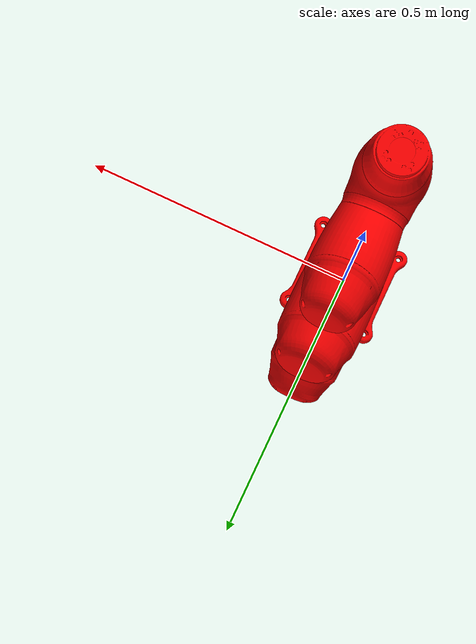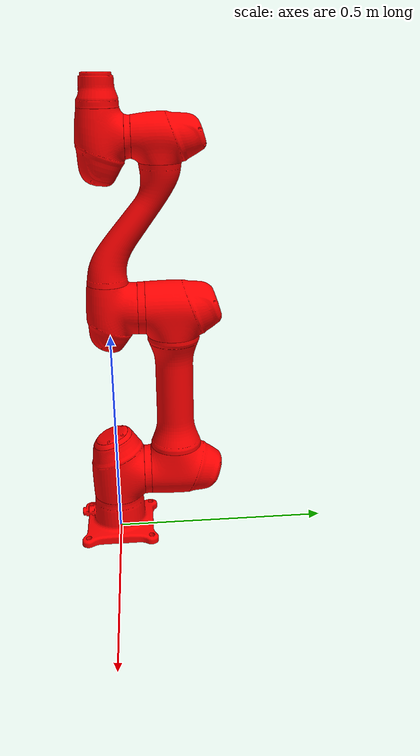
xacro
<?xml version="1.0"?>
<robot xmlns:xacro="http://www.ros.org/wiki/xacro" name="a0509">
    <xacro:arg name="initial_positions_file" default="initial_positions.yaml" />
    <link name="world"/>
    <joint name="world_fixed" type="fixed">
        <origin xyz="0 0 0" rpy="0 0 0"/>
        <parent link="world"/>
        <child link="base_link"/>
    </joint>
    <!-- Import panda urdf file -->
    <xacro:include filename="$(find dsr_description2)/urdf/a0509.urdf" />

    <!-- Import a0509 ros2_control description -->

    <xacro:include filename="dsr.ros2_control.xacro" />

    <xacro:dsr_moveit_ros2_control name="DSRFakeSystem" initial_positions_file="$(arg initial_positions_file)"/>
</robot>

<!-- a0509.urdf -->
<robot name="a0509" xmlns:xacro="http://www.ros.org/wiki/xacro">
		<link name="base_link">
			<inertial>
				<mass value="2.198"/>
				<origin xyz="-1e-06   -0.001096    0.058957"/>
				<inertia ixx="0.010511" ixy="4.9786e-06" ixz="7.1839e-06" iyy="0.012033"
					iyz="-2.3529e-05"
					izz="0.012481"/>
			</inertial>
			<collision>
				<origin rpy="0 0 0" xyz="0 0 0" />
                <geometry>
					<mesh filename="package://dsr_description2/meshes/a0509_collision/A0509_0_0.dae" scale="0.001 0.001 0.001" />
                </geometry>
            </collision>
			<visual>
				<origin rpy="0 0 0" xyz="0 0 0" />
				<geometry>
					<mesh filename="package://dsr_description2/meshes/a0509_white/A0509_0_0.dae" scale="0.001 0.001 0.001" />
				</geometry>
			</visual>
		</link>
		<link name="base"/>
		<joint name="base_link-base" type="fixed">
			<origin rpy="0 0 0" xyz="0 0 0.450"/>
			<parent link="base_link"/>
			<child link="base"/>
		</joint>
		<!-- joint 1 -->
		<joint name="joint_1" type="revolute">
			<parent link="base_link" />
			<child link="link_1" />
			<origin rpy="0 0 0" xyz="0 0 0.1560" />
			<axis xyz="0 0 1" />
			<limit effort="194" lower="-6.2832" upper="6.2832" velocity="3.1416"/>
			<dynamics friction="0" />
		</joint>
		<link name="link_1">
			<inertial>
				<mass value="3.715"/>
				<origin xyz="-6.9e-05    0.024423   -0.007375"/>
				<inertia ixx="0.01899" ixy="7.8574e-07" ixz="1.865e-05" iyy="0.013731" iyz="-0.00072828"
					izz="0.01686"/>
			</inertial>
            <collision>
				<origin rpy="0 0 0" xyz="0 0 0" />
                <geometry>
					<mesh filename="package://dsr_description2/meshes/a0509_collision/A0509_1_0.dae" scale="0.001 0.001 0.001" />
                </geometry>
            </collision>
			<visual>
				<origin rpy="0 0 0" xyz="0 0 0" />
				<geometry>
					<mesh filename="package://dsr_description2/meshes/a0509_white/A0509_1_0.dae" scale="0.001 0.001 0.001" />
				</geometry>
			</visual>
			<collision>
				<origin rpy="0 0 0" xyz="0 0 0" />
                <geometry>
					<mesh filename="package://dsr_description2/meshes/a0509_collision/A0509_1_1.dae" scale="0.001 0.001 0.001" />
                </geometry>
            </collision>
            <visual>
				<origin rpy="0 0 0" xyz="0 0 0" />
				<geometry>
					<mesh filename="package://dsr_description2/meshes/a0509_white/A0509_1_1.dae" scale="0.001 0.001 0.001" />
				</geometry>
			</visual>
			<collision>
				<origin rpy="0 0 0" xyz="0 0 0" />
                <geometry>
					<mesh filename="package://dsr_description2/meshes/a0509_collision/A0509_1_2.dae" scale="0.001 0.001 0.001" />
                </geometry>
            </collision>
            <visual>
				<origin rpy="0 0 0" xyz="0 0 0" />
				<geometry>
					<mesh filename="package://dsr_description2/meshes/a0509_white/A0509_1_2.dae" scale="0.001 0.001 0.001" />
				</geometry>
			</visual>
		</link>
		<!-- joint2 -->
		<joint name="joint_2" type="revolute">
			<parent link="link_1" />
			<child link="link_2" />
			<origin rpy="0 -1.571 -1.571" xyz="0 0 0" />
			<axis xyz="0 0 1" />
			<limit effort="194" lower="-6.2832" upper="6.2832" velocity="3.1416"/>
			<dynamics friction="0" />
		</joint>
		<link name="link_2">
			<inertial>
				<mass value="6.837"/>
				<origin xyz="0.20449 -1.2521e-17     0.13271"/>
				<inertia ixx="0.019399" ixy="0.00010317" ixz="4.2985e-06" iyy="0.25627" iyz="5.1674e-06"
					izz="0.25442"/>
			</inertial>
            <collision>
				<origin rpy="0 0 0" xyz="0 0 0" />
                <geometry>
					<mesh filename="package://dsr_description2/meshes/a0509_collision/A0509_2_0.dae" scale="0.001 0.001 0.001" />
                </geometry>
            </collision>
			<visual>
				<origin rpy="0 0 0" xyz="0 0 0" />
				<geometry>
					<mesh filename="package://dsr_description2/meshes/a0509_white/A0509_2_0.dae" scale="0.001 0.001 0.001" />
				</geometry>
			</visual>
			<collision>
				<origin rpy="0 0 0" xyz="0 0 0" />
                <geometry>
					<mesh filename="package://dsr_description2/meshes/a0509_collision/A0509_2_1.dae" scale="0.001 0.001 0.001" />
                </geometry>
            </collision>
			<visual>
				<origin rpy="0 0 0" xyz="0 0 0" />
				<geometry>
					<mesh filename="package://dsr_description2/meshes/a0509_white/A0509_2_1.dae" scale="0.001 0.001 0.001" />
				</geometry>
			</visual>
			<collision>
				<origin rpy="0 0 0" xyz="0 0 0" />
                <geometry>
					<mesh filename="package://dsr_description2/meshes/a0509_collision/A0509_2_2.dae" scale="0.001 0.001 0.001" />
                </geometry>
            </collision>
			<visual>
				<origin rpy="0 0 0" xyz="0 0 0" />
				<geometry>
					<mesh filename="package://dsr_description2/meshes/a0509_white/A0509_2_2.dae" scale="0.001 0.001 0.001" />
				</geometry>
			</visual>
		</link>
		<!-- joint3 -->
		<joint name="joint_3" type="revolute">
			<parent link="link_2" />
			<child link="link_3" />
			<origin rpy="0 0 1.571" xyz="0.409 0 0" />
			<axis xyz="0 0 1" />
			<limit effort="163" lower="-2.7925" upper="2.7925" velocity="3.1416"/>
			<dynamics friction="0" />
		</joint>
		<link name="link_3">
			<inertial>
				<mass value="2.769"/>
				<origin xyz="7.1e-05   -0.005123    0.033009"/>
				<inertia ixx="0.012526" ixy="-7.1869e-06" ixz="1.3345e-05" iyy="0.013868"
					iyz="-0.00047287"
					izz="0.0088186"/>
			</inertial>
			<collision>
				<origin rpy="0 0 0" xyz="0 0 0" />
                <geometry>
					<mesh filename="package://dsr_description2/meshes/a0509_collision/A0509_3_0.dae" scale="0.001 0.001 0.001" />
                </geometry>
            </collision>
			<visual>
				<origin rpy="0 0 0" xyz="0 0 0" />
				<geometry>
					<mesh filename="package://dsr_description2/meshes/a0509_white/A0509_3_0.dae" scale="0.001 0.001 0.001" />
				</geometry>
			</visual>
			<collision>
				<origin rpy="0 0 0" xyz="0 0 0" />
                <geometry>
					<mesh filename="package://dsr_description2/meshes/a0509_collision/A0509_3_1.dae" scale="0.001 0.001 0.001" />
                </geometry>
            </collision>
            <visual>
				<origin rpy="0 0 0" xyz="0 0 0" />
				<geometry>
					<mesh filename="package://dsr_description2/meshes/a0509_white/A0509_3_1.dae" scale="0.001 0.001 0.001" />
				</geometry>
			</visual>
		</link>
		<!-- joint4 -->
		<joint name="joint_4" type="revolute">
			<parent link="link_3" />
			<child link="link_4" />
			<origin rpy="1.571 0 0" xyz="0 -0.367 0" />
			<axis xyz="0 0 1" />
			<limit effort="50" lower="-6.2832" upper="6.2832" velocity="6.2832"/>
			<dynamics friction="0" />
		</joint>
		<link name="link_4">
			<inertial>
				<mass value="2.679"/>
				<origin xyz="-8.6e-05    0.086348   -0.086031"/>
				<inertia ixx="0.056068" ixy="2.2109e-05" ixz="1.4522e-05" iyy="0.047122" iyz="-0.014997"
					izz="0.013329"/>
			</inertial>
            <collision>
				<origin rpy="0 0 0" xyz="0 0 0" />
                <geometry>
					<mesh filename="package://dsr_description2/meshes/a0509_collision/A0509_4_0.dae" scale="0.001 0.001 0.001" />
                </geometry>
            </collision>
			<visual>
				<origin rpy="0 0 0" xyz="0 0 0" />
				<geometry>
					<mesh filename="package://dsr_description2/meshes/a0509_white/A0509_4_0.dae" scale="0.001 0.001 0.001" />
				</geometry>
			</visual>
			<collision>
				<origin rpy="0 0 0" xyz="0 0 0" />
                <geometry>
					<mesh filename="package://dsr_description2/meshes/a0509_collision/A0509_4_1.dae" scale="0.001 0.001 0.001" />
                </geometry>
            </collision>
			<visual>
				<origin rpy="0 0 0" xyz="0 0 0" />
				<geometry>
					<mesh filename="package://dsr_description2/meshes/a0509_white/A0509_4_1.dae" scale="0.001 0.001 0.001" />
				</geometry>
			</visual>
		</link>
		<!-- joint5 -->
		<joint name="joint_5" type="revolute">
			<parent link="link_4" />
			<child link="link_5" />
			<origin rpy="-1.571 0 0" xyz="0 0 0" />
			<axis xyz="0 0 1" />
			<limit effort="50" lower="-6.2832" upper="6.2832" velocity="6.2832"/>
			<dynamics friction="0" />
		</joint>
		<link name="link_5">
			<inertial>
				<mass value="2.051"/>
				<origin xyz="9.1e-05   -0.006457    0.015434"/>
				<inertia ixx="0.0090788" ixy="-5.3997e-06" ixz="8.3955e-06" iyy="0.0084721"
					iyz="-0.0001816"
					izz="0.010453"/>
			</inertial>
            <collision>
				<origin rpy="0 0 0" xyz="0 0 0" />
                <geometry>
					<mesh filename="package://dsr_description2/meshes/a0509_collision/A0509_5_0.dae" scale="0.001 0.001 0.001" />
                </geometry>
            </collision>
			<visual>
				<origin rpy="0 0 0" xyz="0 0 0" />
				<geometry>
					<mesh filename="package://dsr_description2/meshes/a0509_white/A0509_5_0.dae" scale="0.001 0.001 0.001" />
				</geometry>
			</visual>
			<collision>
				<origin rpy="0 0 0" xyz="0 0 0" />
                <geometry>
					<mesh filename="package://dsr_description2/meshes/a0509_collision/A0509_5_1.dae" scale="0.001 0.001 0.001" />
                </geometry>
            </collision>
            <visual>
				<origin rpy="0 0 0" xyz="0 0 0" />
				<geometry>
					<mesh filename="package://dsr_description2/meshes/a0509_white/A0509_5_1.dae" scale="0.001 0.001 0.001" />
				</geometry>
			</visual>
		</link>
		<!-- joint6 -->
		<joint name="joint_6" type="revolute">
			<parent link="link_5" />
			<child link="link_6" />
			<origin rpy="1.571 0 0" xyz="0 -0.124 0" />
			<axis xyz="0 0 1" />
			<limit effort="50" lower="-6.2832" upper="6.2832" velocity="6.2832"/>
			<dynamics friction="0" />
		</joint>
		<link name="link_6">
			<inertial>
				<mass value="0.773"/>
				<origin xyz="-2.2e-05      -7e-06   -0.051746"/>
				<inertia ixx="0.0087483" ixy="7.9428e-06" ixz="1.7034e-06" iyy="0.0078566"
					iyz="9.6857e-06"
					izz="0.0044452"/>
			</inertial>
			<collision>
				<origin rpy="0 0 0" xyz="0 0 0" />
                <geometry>
					<mesh filename="package://dsr_description2/meshes/a0509_collision/A0509_6_0.dae" scale="0.001 0.001 0.001" />
                </geometry>
            </collision>
			<visual>
				<origin rpy="0 0 0" xyz="0 0 0" />
				<geometry>
					<mesh filename="package://dsr_description2/meshes/a0509_white/A0509_6_0.dae" scale="0.001 0.001 0.001" />
				</geometry>
			</visual>
		</link>
</robot>
